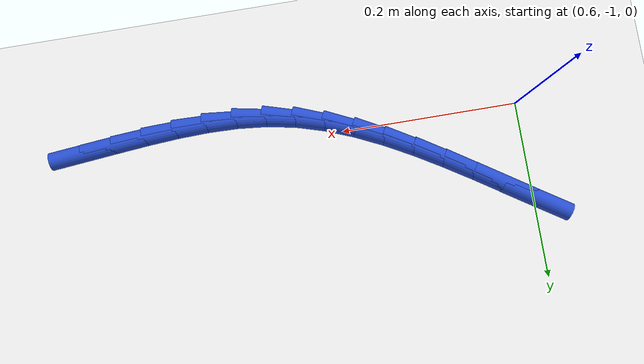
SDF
<sdf version="1.6">
 <world name="default">
  <model name="ground_plane">
   <static>1</static>
   <link name="link">
    <collision name="collision">
     <geometry><plane><normal>0 0 1</normal><size>100 100</size></plane></geometry>
     <surface><friction><ode><mu>100</mu><mu2>50</mu2></ode></friction></surface>
    </collision>
    <visual name="visual">
     <cast_shadows>0</cast_shadows>
     <geometry><plane><normal>0 0 1</normal><size>100 100</size></plane></geometry>
     <material>
      <script><uri>file://media/materials/scripts/gazebo.material</uri><name>Gazebo/WhiteGlow</name></script>
     </material>
    </visual>
   </link>
  </model>
  <model name="line">
   <link name="link_143">
    <pose>1.0881781315087389 -1.0220279143454885 0.01 0 1.57 0.0960000243416979</pose>
    <collision name="collision">
     <geometry><cylinder><radius>0.01</radius><length>0.08</length></cylinder></geometry>
    </collision>
    <visual name="visual">
     <material>
      <script><name>Gazebo/Blue</name><uri>file://media/materials/scripts/gazebo.material</uri></script>
     </material>
     <geometry><cylinder><radius>0.01</radius><length>0.08</length></cylinder></geometry>
    </visual>
   </link>
   <link name="link_144">
    <pose>1.0525488964501482 -1.025458868155242 0.01 0 1.57 0.08993333889471014</pose>
    <collision name="collision">
     <geometry><cylinder><radius>0.01</radius><length>0.08</length></cylinder></geometry>
    </collision>
    <visual name="visual">
     <material>
      <script><name>Gazebo/Blue</name><uri>file://media/materials/scripts/gazebo.material</uri></script>
     </material>
     <geometry><cylinder><radius>0.01</radius><length>0.08</length></cylinder></geometry>
    </visual>
   </link>
   <link name="link_145">
    <pose>1.0173995425136337 -1.0286285169047493 0.01 0 1.57 0.0681259992818558</pose>
    <collision name="collision">
     <geometry><cylinder><radius>0.01</radius><length>0.08</length></cylinder></geometry>
    </collision>
    <visual name="visual">
     <material>
      <script><name>Gazebo/Blue</name><uri>file://media/materials/scripts/gazebo.material</uri></script>
     </material>
     <geometry><cylinder><radius>0.01</radius><length>0.08</length></cylinder></geometry>
    </visual>
   </link>
   <link name="link_146">
    <pose>0.9827372060033367 -1.030993583226807 0.01 0 1.57 0.029761786901461213</pose>
    <collision name="collision">
     <geometry><cylinder><radius>0.01</radius><length>0.08</length></cylinder></geometry>
    </collision>
    <visual name="visual">
     <material>
      <script><name>Gazebo/Blue</name><uri>file://media/materials/scripts/gazebo.material</uri></script>
     </material>
     <geometry><cylinder><radius>0.01</radius><length>0.08</length></cylinder></geometry>
    </visual>
   </link>
   <link name="link_147">
    <pose>0.9485690232234003 -1.0320107897542106 0.01 0 1.57 -0.025952333289219726</pose>
    <collision name="collision">
     <geometry><cylinder><radius>0.01</radius><length>0.08</length></cylinder></geometry>
    </collision>
    <visual name="visual">
     <material>
      <script><name>Gazebo/Blue</name><uri>file://media/materials/scripts/gazebo.material</uri></script>
     </material>
     <geometry><cylinder><radius>0.01</radius><length>0.08</length></cylinder></geometry>
    </visual>
   </link>
   <link name="link_148">
    <pose>0.914902130477967 -1.031136859119755 0.01 0 1.57 -0.09944465626465974</pose>
    <collision name="collision">
     <geometry><cylinder><radius>0.01</radius><length>0.08</length></cylinder></geometry>
    </collision>
    <visual name="visual">
     <material>
      <script><name>Gazebo/Blue</name><uri>file://media/materials/scripts/gazebo.material</uri></script>
     </material>
     <geometry><cylinder><radius>0.01</radius><length>0.08</length></cylinder></geometry>
    </visual>
   </link>
   <link name="link_149">
    <pose>0.8817436640711795 -1.0278285139562366 0.01 0 1.57 -0.19021296059012857</pose>
    <collision name="collision">
     <geometry><cylinder><radius>0.01</radius><length>0.08</length></cylinder></geometry>
    </collision>
    <visual name="visual">
     <material>
      <script><name>Gazebo/Blue</name><uri>file://media/materials/scripts/gazebo.material</uri></script>
     </material>
     <geometry><cylinder><radius>0.01</radius><length>0.08</length></cylinder></geometry>
    </visual>
   </link>
   <link name="link_150">
    <pose>0.8491006781383538 -1.0215434111185504 0.01 0 1.57 -0.2884417805403336</pose>
    <collision name="collision">
     <geometry><cylinder><radius>0.01</radius><length>0.08</length></cylinder></geometry>
    </collision>
    <visual name="visual">
     <material>
      <script><name>Gazebo/Blue</name><uri>file://media/materials/scripts/gazebo.material</uri></script>
     </material>
     <geometry><cylinder><radius>0.01</radius><length>0.08</length></cylinder></geometry>
    </visual>
   </link>
   <link name="link_151">
    <pose>0.8169567803372265 -1.0120057832222025 0.01 0 1.57 -0.3736004697436749</pose>
    <collision name="collision">
     <geometry><cylinder><radius>0.01</radius><length>0.08</length></cylinder></geometry>
    </collision>
    <visual name="visual">
     <material>
      <script><name>Gazebo/Blue</name><uri>file://media/materials/scripts/gazebo.material</uri></script>
     </material>
     <geometry><cylinder><radius>0.01</radius><length>0.08</length></cylinder></geometry>
    </visual>
   </link>
   <link name="link_152">
    <pose>0.7852399412895644 -0.9995724306162695 0.01 0 1.57 -0.44292307241413015</pose>
    <collision name="collision">
     <geometry><cylinder><radius>0.01</radius><length>0.08</length></cylinder></geometry>
    </collision>
    <visual name="visual">
     <material>
      <script><name>Gazebo/Blue</name><uri>file://media/materials/scripts/gazebo.material</uri></script>
     </material>
     <geometry><cylinder><radius>0.01</radius><length>0.08</length></cylinder></geometry>
    </visual>
   </link>
   <link name="link_153">
    <pose>0.7538700597543045 -0.9846919270501402 0.01 0 1.57 -0.4972081447952705</pose>
    <collision name="collision">
     <geometry><cylinder><radius>0.01</radius><length>0.08</length></cylinder></geometry>
    </collision>
    <visual name="visual">
     <material>
      <script><name>Gazebo/Blue</name><uri>file://media/materials/scripts/gazebo.material</uri></script>
     </material>
     <geometry><cylinder><radius>0.01</radius><length>0.08</length></cylinder></geometry>
    </visual>
   </link>
   <link name="link_154">
    <pose>0.7227670344903862 -0.9678128462732046 0.01 0 1.57 -0.5375444258886358</pose>
    <collision name="collision">
     <geometry><cylinder><radius>0.01</radius><length>0.08</length></cylinder></geometry>
    </collision>
    <visual name="visual">
     <material>
      <script><name>Gazebo/Blue</name><uri>file://media/materials/scripts/gazebo.material</uri></script>
     </material>
     <geometry><cylinder><radius>0.01</radius><length>0.08</length></cylinder></geometry>
    </visual>
   </link>
   <link name="link_155">
    <pose>0.6918507642567474 -0.9493837620348515 0.01 0 1.57 -0.5649806327377198</pose>
    <collision name="collision">
     <geometry><cylinder><radius>0.01</radius><length>0.08</length></cylinder></geometry>
    </collision>
    <visual name="visual">
     <material>
      <script><name>Gazebo/Blue</name><uri>file://media/materials/scripts/gazebo.material</uri></script>
     </material>
     <geometry><cylinder><radius>0.01</radius><length>0.08</length></cylinder></geometry>
    </visual>
   </link>
   <link name="link_156">
    <pose>0.661041147812327 -0.9298532480844711 0.01 0 1.57 -0.5803471684114011</pose>
    <collision name="collision">
     <geometry><cylinder><radius>0.01</radius><length>0.08</length></cylinder></geometry>
    </collision>
    <visual name="visual">
     <material>
      <script><name>Gazebo/Blue</name><uri>file://media/materials/scripts/gazebo.material</uri></script>
     </material>
     <geometry><cylinder><radius>0.01</radius><length>0.08</length></cylinder></geometry>
    </visual>
   </link>
   <link name="link_157">
    <pose>0.630258083916063 -0.909669878171452 0.01 0 1.57 -0.5841742225376334</pose>
    <collision name="collision">
     <geometry><cylinder><radius>0.01</radius><length>0.08</length></cylinder></geometry>
    </collision>
    <visual name="visual">
     <material>
      <script><name>Gazebo/Blue</name><uri>file://media/materials/scripts/gazebo.material</uri></script>
     </material>
     <geometry><cylinder><radius>0.01</radius><length>0.08</length></cylinder></geometry>
    </visual>
   </link>
   <link name="link_158">
    <pose>0.5994214713268944 -0.8892822260451851 0.01 0 1.57 -0.5766647473889974</pose>
    <collision name="collision">
     <geometry><cylinder><radius>0.01</radius><length>0.08</length></cylinder></geometry>
    </collision>
    <visual name="visual">
     <material>
      <script><name>Gazebo/Blue</name><uri>file://media/materials/scripts/gazebo.material</uri></script>
     </material>
     <geometry><cylinder><radius>0.01</radius><length>0.08</length></cylinder></geometry>
    </visual>
   </link>
  </model>
 </world>
</sdf>
